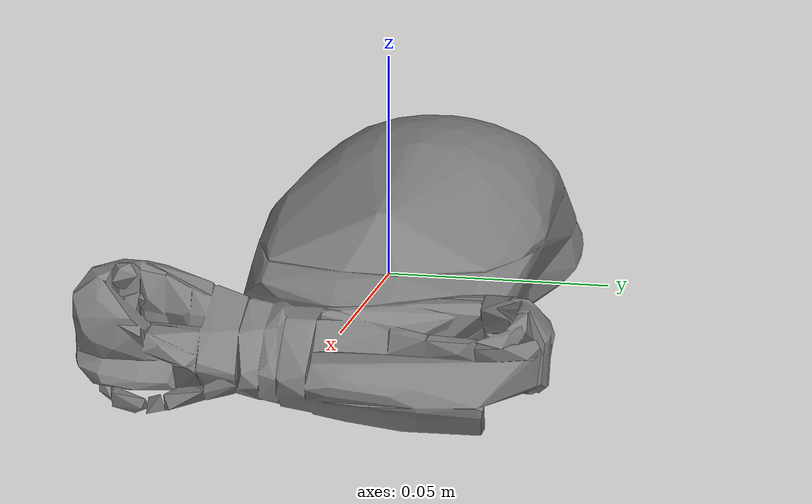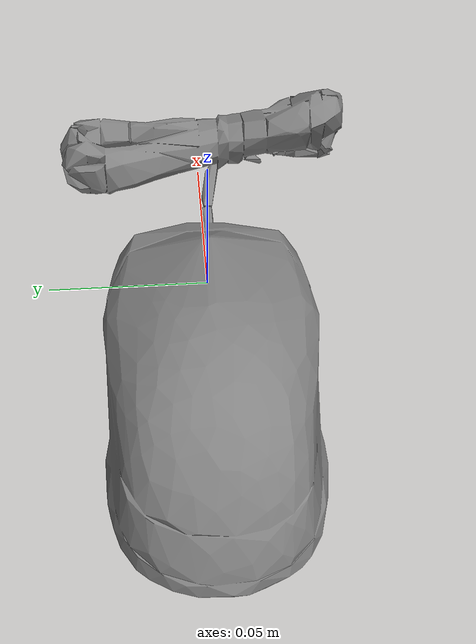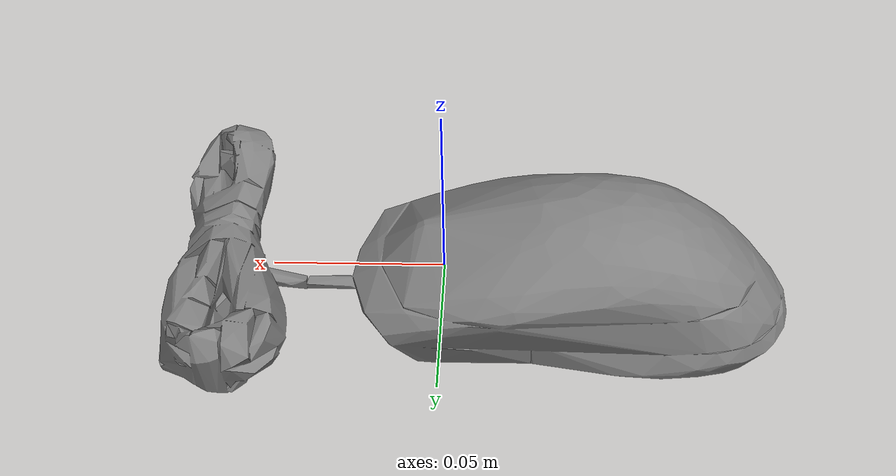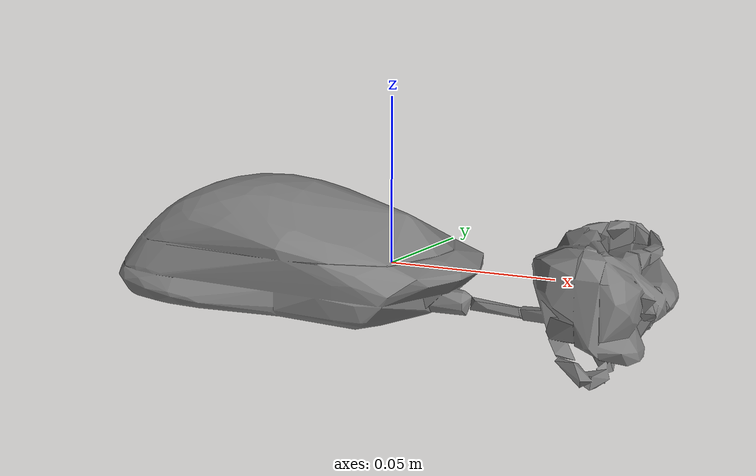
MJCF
<mujoco model="mouse_Razer_Taipan_White_Ambidextrous_Gaming_Mouse_M">
  <default>
    <default class="visual">
      <geom group="2" type="mesh" contype="0" conaffinity="0" />
    </default>
    <default class="collision">
      <geom group="3" type="mesh" />
    </default>
  </default>
  <asset>
    <mesh file="mouse_Razer_Taipan_White_Ambidextrous_Gaming_Mouse_M.stl" />
    <mesh file="mouse_Razer_Taipan_White_Ambidextrous_Gaming_Mouse_M_collision_0.stl" />
    <mesh file="mouse_Razer_Taipan_White_Ambidextrous_Gaming_Mouse_M_collision_1.stl" />
    <mesh file="mouse_Razer_Taipan_White_Ambidextrous_Gaming_Mouse_M_collision_2.stl" />
    <mesh file="mouse_Razer_Taipan_White_Ambidextrous_Gaming_Mouse_M_collision_3.stl" />
    <mesh file="mouse_Razer_Taipan_White_Ambidextrous_Gaming_Mouse_M_collision_4.stl" />
    <mesh file="mouse_Razer_Taipan_White_Ambidextrous_Gaming_Mouse_M_collision_5.stl" />
    <mesh file="mouse_Razer_Taipan_White_Ambidextrous_Gaming_Mouse_M_collision_6.stl" />
    <mesh file="mouse_Razer_Taipan_White_Ambidextrous_Gaming_Mouse_M_collision_7.stl" />
    <mesh file="mouse_Razer_Taipan_White_Ambidextrous_Gaming_Mouse_M_collision_8.stl" />
    <mesh file="mouse_Razer_Taipan_White_Ambidextrous_Gaming_Mouse_M_collision_9.stl" />
    <mesh file="mouse_Razer_Taipan_White_Ambidextrous_Gaming_Mouse_M_collision_10.stl" />
    <mesh file="mouse_Razer_Taipan_White_Ambidextrous_Gaming_Mouse_M_collision_11.stl" />
    <mesh file="mouse_Razer_Taipan_White_Ambidextrous_Gaming_Mouse_M_collision_12.stl" />
    <mesh file="mouse_Razer_Taipan_White_Ambidextrous_Gaming_Mouse_M_collision_13.stl" />
    <mesh file="mouse_Razer_Taipan_White_Ambidextrous_Gaming_Mouse_M_collision_14.stl" />
    <mesh file="mouse_Razer_Taipan_White_Ambidextrous_Gaming_Mouse_M_collision_15.stl" />
  </asset>
  <worldbody>
    <body name="mouse_Razer_Taipan_White_Ambidextrous_Gaming_Mouse_M">
      <geom mesh="mouse_Razer_Taipan_White_Ambidextrous_Gaming_Mouse_M" class="visual" />
      <geom mesh="mouse_Razer_Taipan_White_Ambidextrous_Gaming_Mouse_M_collision_0" class="collision" />
      <geom mesh="mouse_Razer_Taipan_White_Ambidextrous_Gaming_Mouse_M_collision_1" class="collision" />
      <geom mesh="mouse_Razer_Taipan_White_Ambidextrous_Gaming_Mouse_M_collision_2" class="collision" />
      <geom mesh="mouse_Razer_Taipan_White_Ambidextrous_Gaming_Mouse_M_collision_3" class="collision" />
      <geom mesh="mouse_Razer_Taipan_White_Ambidextrous_Gaming_Mouse_M_collision_4" class="collision" />
      <geom mesh="mouse_Razer_Taipan_White_Ambidextrous_Gaming_Mouse_M_collision_5" class="collision" />
      <geom mesh="mouse_Razer_Taipan_White_Ambidextrous_Gaming_Mouse_M_collision_6" class="collision" />
      <geom mesh="mouse_Razer_Taipan_White_Ambidextrous_Gaming_Mouse_M_collision_7" class="collision" />
      <geom mesh="mouse_Razer_Taipan_White_Ambidextrous_Gaming_Mouse_M_collision_8" class="collision" />
      <geom mesh="mouse_Razer_Taipan_White_Ambidextrous_Gaming_Mouse_M_collision_9" class="collision" />
      <geom mesh="mouse_Razer_Taipan_White_Ambidextrous_Gaming_Mouse_M_collision_10" class="collision" />
      <geom mesh="mouse_Razer_Taipan_White_Ambidextrous_Gaming_Mouse_M_collision_11" class="collision" />
      <geom mesh="mouse_Razer_Taipan_White_Ambidextrous_Gaming_Mouse_M_collision_12" class="collision" />
      <geom mesh="mouse_Razer_Taipan_White_Ambidextrous_Gaming_Mouse_M_collision_13" class="collision" />
      <geom mesh="mouse_Razer_Taipan_White_Ambidextrous_Gaming_Mouse_M_collision_14" class="collision" />
      <geom mesh="mouse_Razer_Taipan_White_Ambidextrous_Gaming_Mouse_M_collision_15" class="collision" />
    </body>
  </worldbody>
</mujoco>
